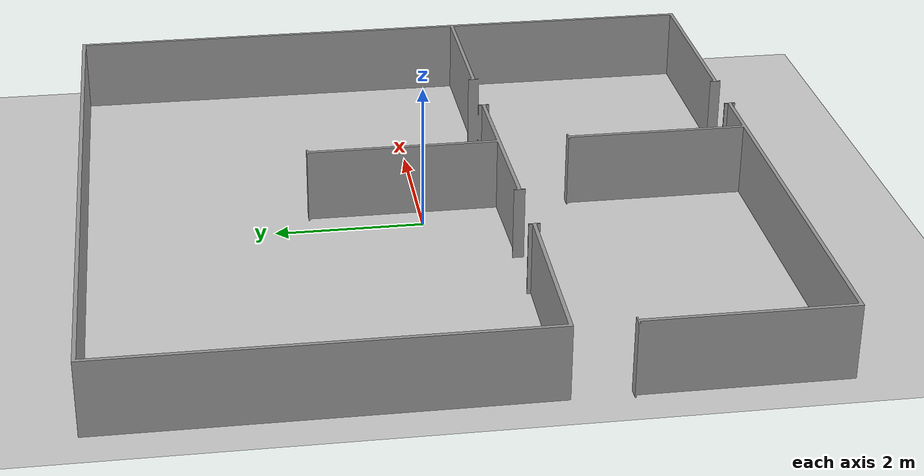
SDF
<sdf version="1.7">
 <world name="default">
  <gravity>0 0 -9.8</gravity>
  <magnetic_field>6e-06 2.3e-05 -4.2e-05</magnetic_field>
  <atmosphere type="adiabatic"/>
  <physics type="ode">
   <max_step_size>0.002</max_step_size>
   <real_time_factor>1</real_time_factor>
   <real_time_update_rate>500</real_time_update_rate>
  </physics>
  <scene><ambient>0.4 0.4 0.4 1</ambient><background>0.7 0.7 0.7 1</background><shadows>1</shadows></scene>
  <spherical_coordinates>
   <surface_model>EARTH_WGS84</surface_model>
   <latitude_deg>0</latitude_deg>
   <longitude_deg>0</longitude_deg>
   <elevation>0</elevation>
   <heading_deg>0</heading_deg>
  </spherical_coordinates>
  <model name="gplane">
   <link name="body">
    <collision name="gplane_coll">
     <geometry><plane><normal>0 0 1</normal><size>10.075 13.18</size></plane></geometry>
     <surface><contact><ode><kp>1e+06</kp><kd>1</kd></ode></contact></surface>
     <laser_retro>2000</laser_retro>
    </collision>
    <visual name="gplane_vis">
     <geometry><plane><normal>0 0 1</normal><size>10.075 13.18</size></plane></geometry>
     <material>
      <script>
       <uri>model://base_materials/carpet/scripts</uri>
       <uri>model://base_materials/carpet/textures</uri>
       <name>carpet/carpet01</name>
      </script>
     </material>
     <cast_shadows>0</cast_shadows>
    </visual>
    <velocity_decay><linear>0</linear><angular>0</angular></velocity_decay>
   </link>
   <static>1</static>
  </model>
  <light name="inner_point_white1" type="point">
   <pose>4 5 4 0 -0 0</pose>
   <diffuse>0.2 0.2 0.2 1</diffuse>
   <specular>0.1 0.1 0.1 1</specular>
   <attenuation>
    <range>20</range>
    <linear>0.1</linear>
    <constant>0.2</constant>
    <quadratic>0</quadratic>
   </attenuation>
   <cast_shadows>0</cast_shadows>
   <direction>0 0 -1</direction>
   <spot><inner_angle>0</inner_angle><outer_angle>0</outer_angle><falloff>0</falloff></spot>
  </light>
  <light name="inner_point_white2" type="point">
   <pose>4 10 4 0 -0 0</pose>
   <diffuse>0.2 0.2 0.2 1</diffuse>
   <specular>0.1 0.1 0.1 1</specular>
   <attenuation>
    <range>20</range>
    <linear>0.1</linear>
    <constant>0.2</constant>
    <quadratic>0</quadratic>
   </attenuation>
   <cast_shadows>0</cast_shadows>
   <direction>0 0 -1</direction>
   <spot><inner_angle>0</inner_angle><outer_angle>0</outer_angle><falloff>0</falloff></spot>
  </light>
  <light name="inner_point_white3" type="point">
   <pose>8 5 4 0 -0 0</pose>
   <diffuse>0.2 0.2 0.2 1</diffuse>
   <specular>0.1 0.1 0.1 1</specular>
   <attenuation>
    <range>20</range>
    <linear>0.1</linear>
    <constant>0.2</constant>
    <quadratic>0</quadratic>
   </attenuation>
   <cast_shadows>0</cast_shadows>
   <direction>0 0 -1</direction>
   <spot><inner_angle>0</inner_angle><outer_angle>0</outer_angle><falloff>0</falloff></spot>
  </light>
  <light name="inner_point_white4" type="point">
   <pose>8 10 4 0 -0 0</pose>
   <diffuse>0.2 0.2 0.2 1</diffuse>
   <specular>0.1 0.1 0.1 1</specular>
   <attenuation>
    <range>20</range>
    <linear>0.1</linear>
    <constant>0.2</constant>
    <quadratic>0</quadratic>
   </attenuation>
   <cast_shadows>0</cast_shadows>
   <direction>0 0 -1</direction>
   <spot><inner_angle>0</inner_angle><outer_angle>0</outer_angle><falloff>0</falloff></spot>
  </light>
  <light name="inner_point_white5" type="point">
   <pose>4 5 4 0 -0 0</pose>
   <diffuse>0.2 0.2 0.2 1</diffuse>
   <specular>0.1 0.1 0.1 1</specular>
   <attenuation>
    <range>20</range>
    <linear>0.1</linear>
    <constant>0.2</constant>
    <quadratic>0</quadratic>
   </attenuation>
   <cast_shadows>0</cast_shadows>
   <direction>0 0 -1</direction>
   <spot><inner_angle>0</inner_angle><outer_angle>0</outer_angle><falloff>0</falloff></spot>
  </light>
  <light name="inner_point_white6" type="point">
   <pose>4 10 4 0 -0 0</pose>
   <diffuse>0.2 0.2 0.2 1</diffuse>
   <specular>0.1 0.1 0.1 1</specular>
   <attenuation>
    <range>20</range>
    <linear>0.1</linear>
    <constant>0.2</constant>
    <quadratic>0</quadratic>
   </attenuation>
   <cast_shadows>0</cast_shadows>
   <direction>0 0 -1</direction>
   <spot><inner_angle>0</inner_angle><outer_angle>0</outer_angle><falloff>0</falloff></spot>
  </light>
  <light name="inner_point_white7" type="point">
   <pose>8 5 4 0 -0 0</pose>
   <diffuse>0.2 0.2 0.2 1</diffuse>
   <specular>0.1 0.1 0.1 1</specular>
   <attenuation>
    <range>20</range>
    <linear>0.1</linear>
    <constant>0.2</constant>
    <quadratic>0</quadratic>
   </attenuation>
   <cast_shadows>0</cast_shadows>
   <direction>0 0 -1</direction>
   <spot><inner_angle>0</inner_angle><outer_angle>0</outer_angle><falloff>0</falloff></spot>
  </light>
  <light name="inner_point_white8" type="point">
   <pose>8 10 4 0 -0 0</pose>
   <diffuse>0.2 0.2 0.2 1</diffuse>
   <specular>0.1 0.1 0.1 1</specular>
   <attenuation>
    <range>20</range>
    <linear>0.1</linear>
    <constant>0.2</constant>
    <quadratic>0</quadratic>
   </attenuation>
   <cast_shadows>0</cast_shadows>
   <direction>0 0 -1</direction>
   <spot><inner_angle>0</inner_angle><outer_angle>0</outer_angle><falloff>0</falloff></spot>
  </light>
  <model name="robocup_2024">
   <link name="link_0">
    <inertial>
     <mass>1</mass>
     <inertia>
      <ixx>0.166667</ixx>
      <ixy>0</ixy>
      <ixz>0</ixz>
      <iyy>0.166667</iyy>
      <iyz>0</iyz>
      <izz>0.166667</izz>
     </inertia>
    </inertial>
    <visual name="visual">
     <geometry><mesh><uri>model://EVENTS/mesh/RCUP_24.dae</uri><scale>1 1 1</scale></mesh></geometry>
     <material>
      <lighting>1</lighting>
      <script><uri>file://media/materials/scripts/gazebo.material</uri><name>Gazebo/Grey</name></script>
      <shader type="pixel"/>
     </material>
    </visual>
    <collision name="collision">
     <geometry><mesh><uri>model://EVENTS/mesh/RCUP_24.dae</uri><scale>1 1 1</scale></mesh></geometry>
     <surface>
      <friction>
       <ode><mu>1</mu><mu2>1</mu2><fdir1>0 0 0</fdir1><slip1>0</slip1><slip2>0</slip2></ode>
       <torsional>
        <coefficient>1</coefficient>
        <patch_radius>0</patch_radius>
        <surface_radius>0</surface_radius>
        <use_patch_radius>1</use_patch_radius>
        <ode><slip>0</slip></ode>
       </torsional>
      </friction>
      <bounce><restitution_coefficient>0</restitution_coefficient><threshold>1e+06</threshold></bounce>
      <contact>
       <collide_without_contact>0</collide_without_contact>
       <collide_without_contact_bitmask>1</collide_without_contact_bitmask>
       <collide_bitmask>1</collide_bitmask>
       <ode>
        <soft_cfm>0</soft_cfm>
        <soft_erp>0.2</soft_erp>
        <kp>1e+13</kp>
        <kd>1</kd>
        <max_vel>0.01</max_vel>
        <min_depth>0</min_depth>
       </ode>
       <bullet>
        <split_impulse>1</split_impulse>
        <split_impulse_penetration_threshold>-0.01</split_impulse_penetration_threshold>
        <soft_cfm>0</soft_cfm>
        <soft_erp>0.2</soft_erp>
        <kp>1e+13</kp>
        <kd>1</kd>
       </bullet>
      </contact>
     </surface>
    </collision>
   </link>
   <static>1</static>
  </model>
 </world>
</sdf>
